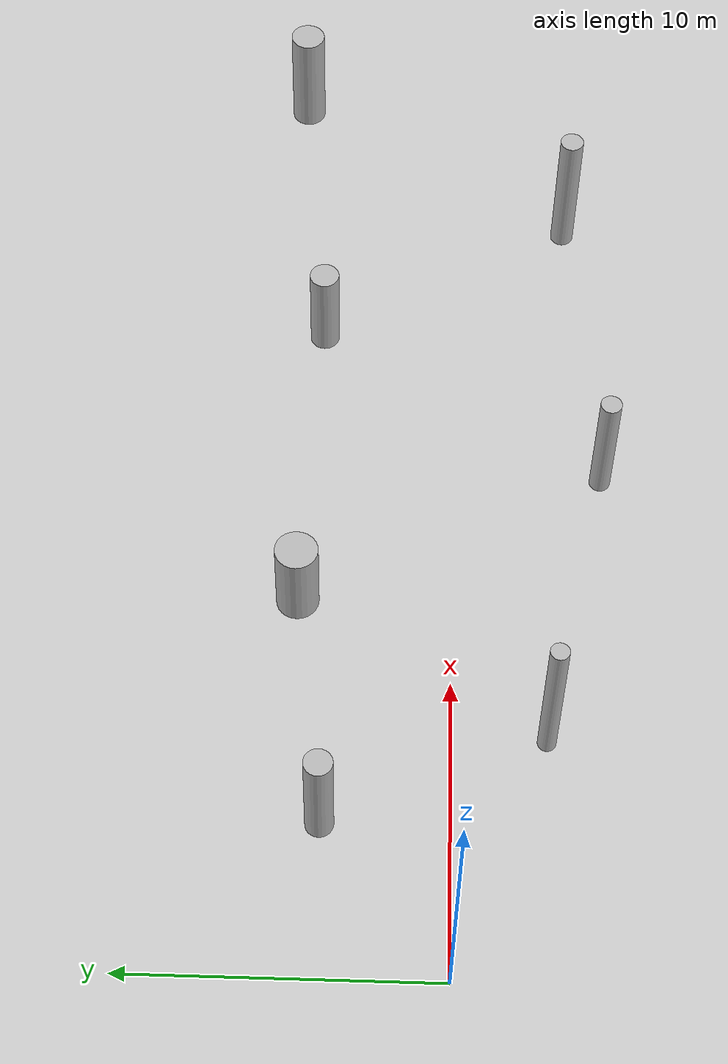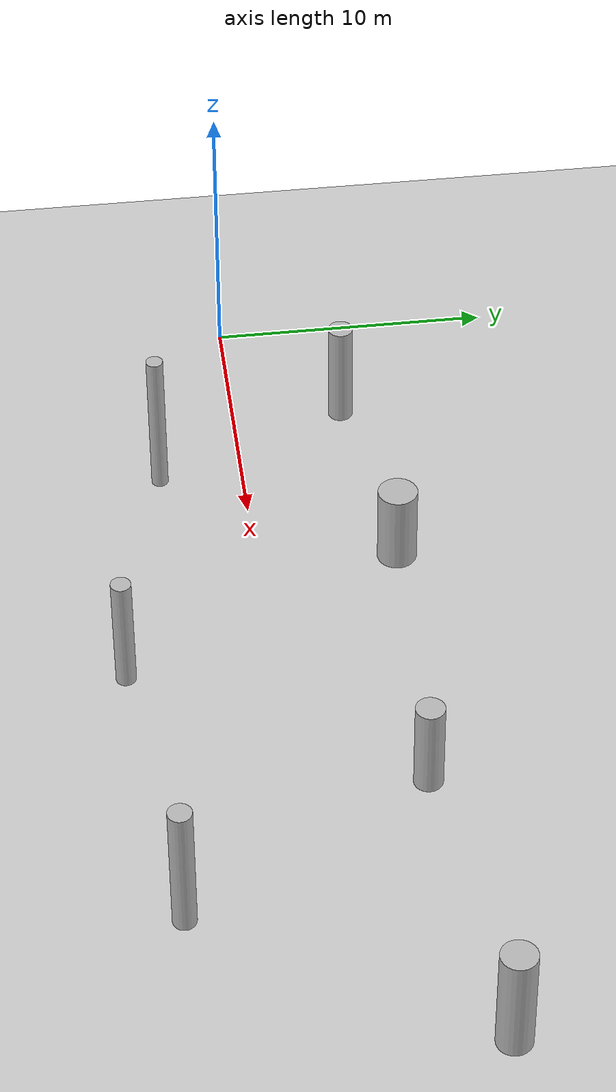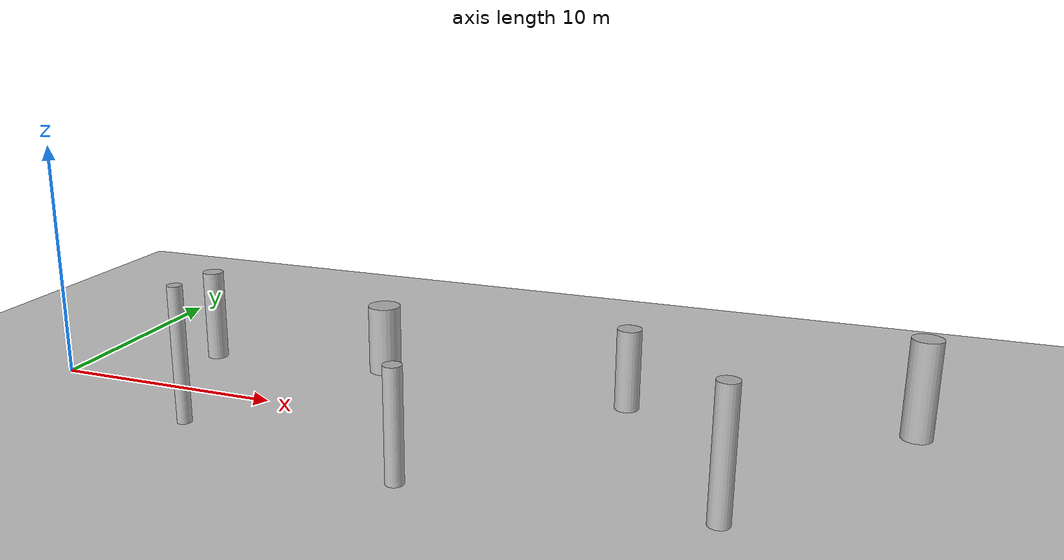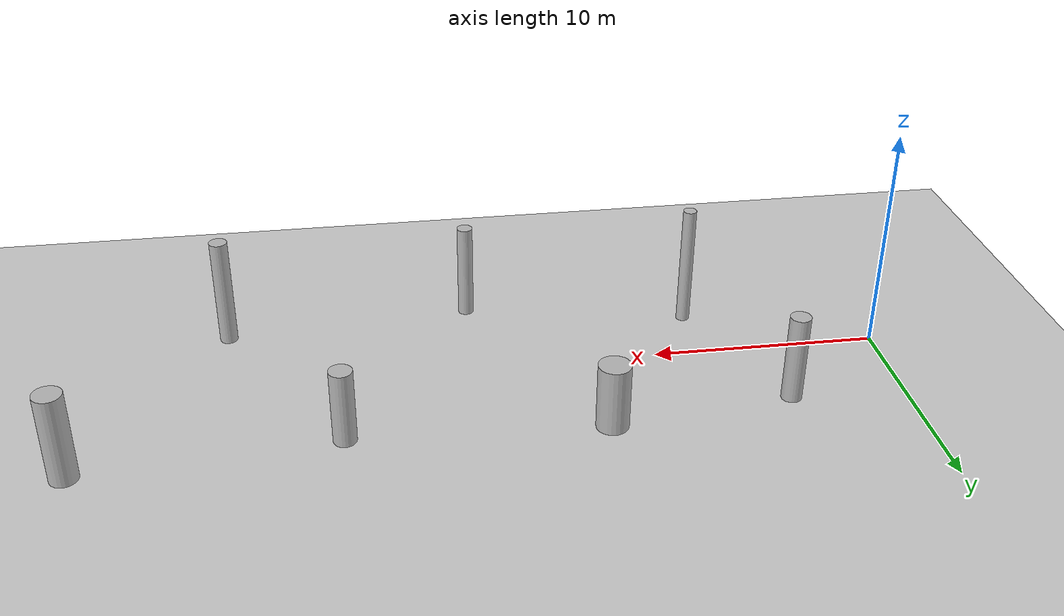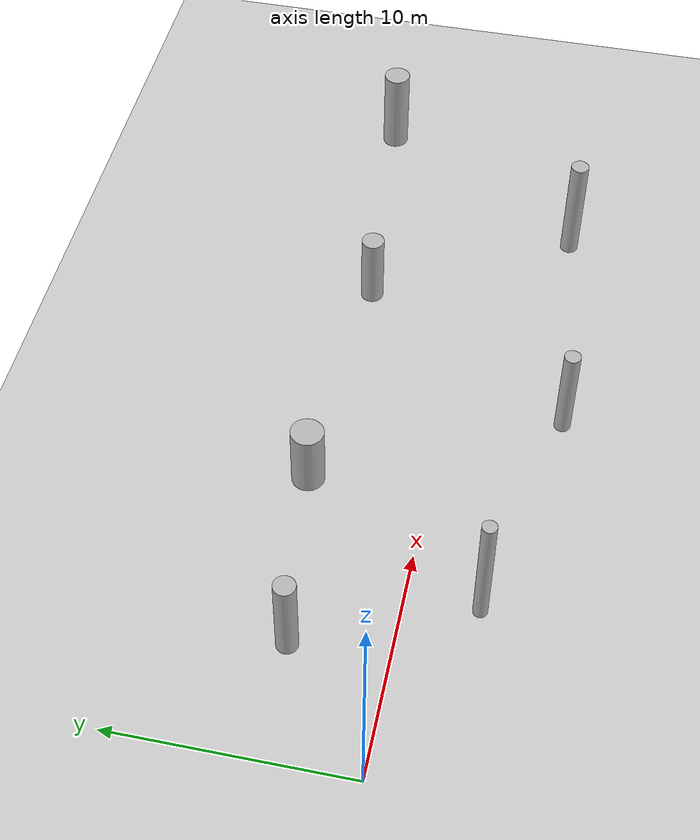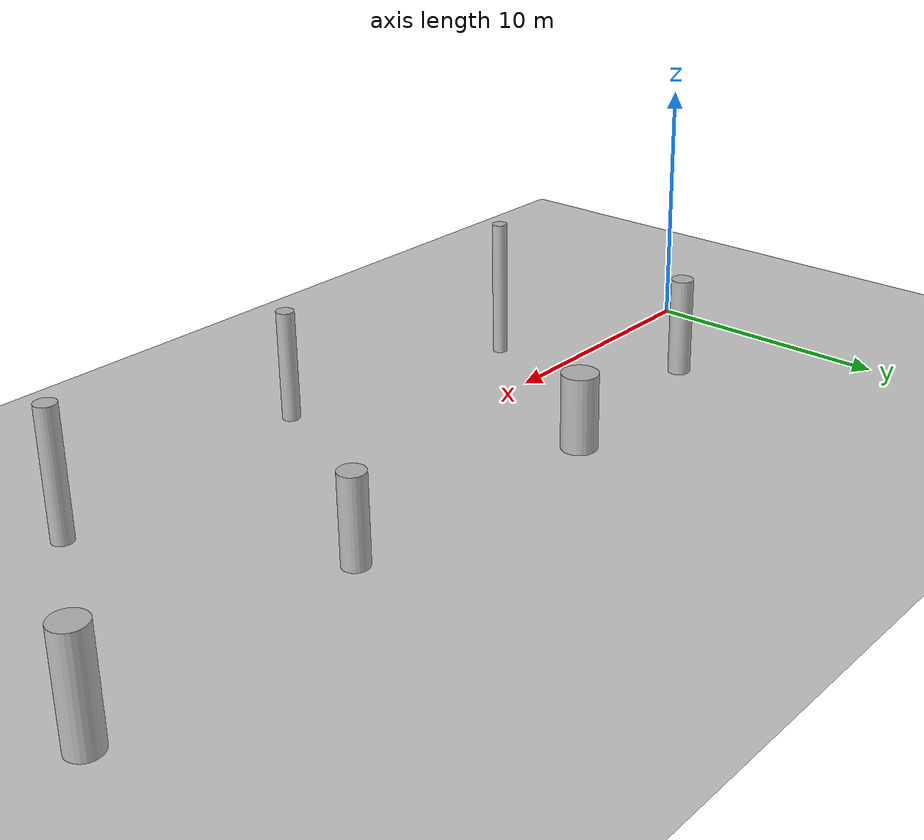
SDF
<sdf version="1.9">
 <world name="forest_clutter">
  <physics type="ode">
   <max_step_size>0.004</max_step_size>
   <real_time_factor>0.8</real_time_factor>
   <real_time_update_rate>200</real_time_update_rate>
  </physics>
  <gravity>0 0 -9.8</gravity>
  <scene>
   <grid>true</grid>
   <ambient>0.4 0.45 0.4 1</ambient>
   <background>0.55 0.68 0.58 1</background>
   <shadows>true</shadows>
  </scene>
  <model name="ground_plane">
   <static>true</static>
   <link name="link">
    <collision name="collision">
     <geometry><plane><normal>0 0 1</normal><size>200 200</size></plane></geometry>
    </collision>
    <visual name="visual"><geometry><plane><normal>0 0 1</normal><size>200 200</size></plane></geometry></visual>
   </link>
  </model>
  <model name="tree_01">
   <static>true</static>
   <pose>5 4 2 0 0 0</pose>
   <link name="link">
    <collision name="collision">
     <geometry><cylinder><radius>0.45</radius><length>4</length></cylinder></geometry>
    </collision>
    <visual name="visual">
     <geometry><cylinder><radius>0.45</radius><length>4</length></cylinder></geometry>
    </visual>
   </link>
  </model>
  <model name="tree_02">
   <static>true</static>
   <pose>8 -3 2.8 0 0 0</pose>
   <link name="link">
    <collision name="collision">
     <geometry><cylinder><radius>0.3</radius><length>5.6</length></cylinder></geometry>
    </collision>
    <visual name="visual">
     <geometry><cylinder><radius>0.3</radius><length>5.6</length></cylinder></geometry>
    </visual>
   </link>
  </model>
  <model name="tree_03">
   <static>true</static>
   <pose>13 5 1.5 0 0 0</pose>
   <link name="link">
    <collision name="collision">
     <geometry><cylinder><radius>0.7</radius><length>3</length></cylinder></geometry>
    </collision>
    <visual name="visual">
     <geometry><cylinder><radius>0.7</radius><length>3</length></cylinder></geometry>
    </visual>
   </link>
  </model>
  <model name="tree_04">
   <static>true</static>
   <pose>18 -5 2.2 0 0 0</pose>
   <link name="link">
    <collision name="collision">
     <geometry><cylinder><radius>0.35</radius><length>4.4</length></cylinder></geometry>
    </collision>
    <visual name="visual">
     <geometry><cylinder><radius>0.35</radius><length>4.4</length></cylinder></geometry>
    </visual>
   </link>
  </model>
  <model name="tree_05">
   <static>true</static>
   <pose>24 4.5 1.7 0 0 0</pose>
   <link name="link">
    <collision name="collision">
     <geometry><cylinder><radius>0.5</radius><length>3.4</length></cylinder></geometry>
    </collision>
    <visual name="visual">
     <geometry><cylinder><radius>0.5</radius><length>3.4</length></cylinder></geometry>
    </visual>
   </link>
  </model>
  <model name="tree_06">
   <static>true</static>
   <pose>29 -4 2.5 0 0 0</pose>
   <link name="link">
    <collision name="collision">
     <geometry><cylinder><radius>0.4</radius><length>5</length></cylinder></geometry>
    </collision>
    <visual name="visual">
     <geometry><cylinder><radius>0.4</radius><length>5</length></cylinder></geometry>
    </visual>
   </link>
  </model>
  <model name="tree_07">
   <static>true</static>
   <pose>35 5.5 2 0 0 0</pose>
   <link name="link">
    <collision name="collision">
     <geometry><cylinder><radius>0.6</radius><length>4</length></cylinder></geometry>
    </collision>
    <visual name="visual">
     <geometry><cylinder><radius>0.6</radius><length>4</length></cylinder></geometry>
    </visual>
   </link>
  </model>
  <light name="sunUTC" type="directional">
   <pose>0 0 500 0 0 0</pose>
   <intensity>1</intensity>
   <direction>0.001 0.625 -0.78</direction>
  </light>
  <spherical_coordinates>
   <surface_model>EARTH_WGS84</surface_model>
   <world_frame_orientation>ENU</world_frame_orientation>
   <latitude_deg>10.8231</latitude_deg>
   <longitude_deg>106.6297</longitude_deg>
   <elevation>10</elevation>
  </spherical_coordinates>
 </world>
</sdf>
